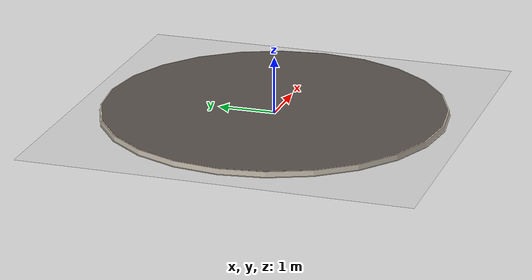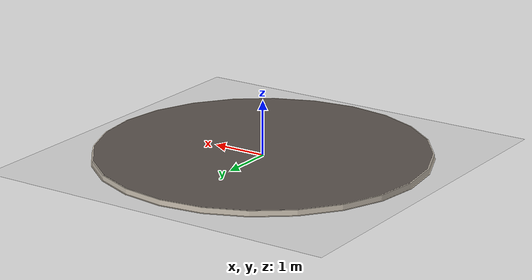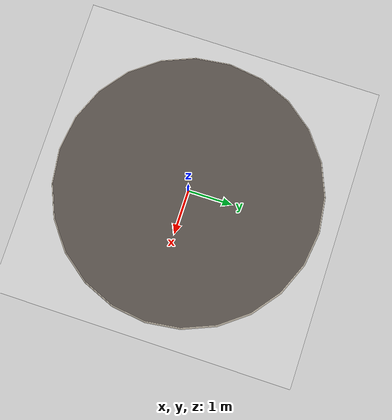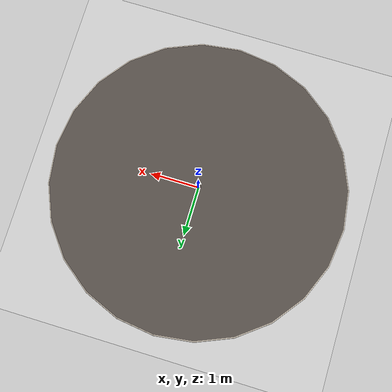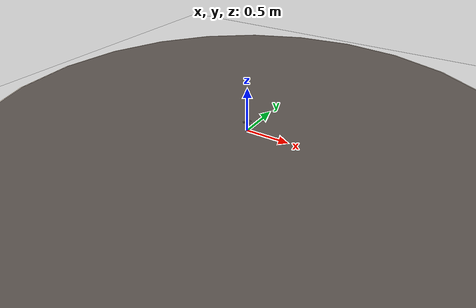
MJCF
<?xml version="1.0" encoding="UTF-8"?>
<mujoco model="sumo_luxury_studio">
  <compiler angle="radian"/>
  <option gravity="0 0 -9.81"/>

  <!-- =============== ASSETS =============== -->
  <asset>
    <!-- Studio cyclorama: white to light gray gradient -->
    <texture name="studio_sky" type="skybox"
             builtin="gradient" width="2048"
             rgb1="1.0 1.0 1.0"
             rgb2="0.95 0.95 0.96"
             mark="none"/>

    <!-- Luxury white/grey checker floor (like MuJoCo default) -->
    <!-- Increased contrast: 0.95 vs 0.7 (was 0.95 vs 0.85) -->
    <!-- Bigger squares: 4x4 grid (was 8x8) -->
    <texture name="studio_floor_tex" type="2d" builtin="checker"
             rgb1="0.95 0.95 0.95"
             rgb2="0.70 0.70 0.70"
             width="512" height="512"
             mark="edge"
             markrgb="0.60 0.60 0.60"/>
    <material name="studio_floor_mat"
              texture="studio_floor_tex"
              texrepeat="2 2"
              texuniform="true"
              specular="0.0"
              shininess="0.0"
              reflectance="0.00"
              emission="0"/>

    <!-- Dohyō ring: muted clay/composite surface -->
    <material name="dohyo_surface"
              rgba="0.82 0.78 0.72 1.0"
              specular="0.05"
              shininess="0.1"
              reflectance="0.02"
              emission="0"/>

    <!-- Dohyō boundary marking: clean circular line -->
    <material name="dohyo_boundary"
              rgba="0.35 0.32 0.30 1.0"
              specular="0"
              shininess="0"
              reflectance="0"/>

    <!-- Dohyō side bevel (subtle darker edge) -->
    <material name="dohyo_bevel"
              rgba="0.72 0.68 0.62 1.0"
              specular="0.03"
              shininess="0.05"
              reflectance="0"/>

    <!-- Start position markers -->
    <material name="red_marker"
              rgba="0.85 0.20 0.20 0.8"
              emission="0"/>
    <material name="blue_marker"
              rgba="0.20 0.35 0.85 0.8"
              emission="0"
              />
  </asset>

  <!-- =============== VISUALS =============== -->
  <visual>
    <!-- Perspective camera with moderate FOV -->
    <global fovy="45" offwidth="1920" offheight="1080"/>
    <!-- Soft ambient + controlled headlight -->
    <headlight ambient="0.35 0.35 0.35" diffuse="0.15 0.15 0.15" specular="0.05 0.05 0.05"/>
    <!-- Clean depth range -->
    <map fogstart="100" fogend="101" znear="0.01" zfar="100" haze="0"/>
    <!-- Enable shadows for grounding -->
    <quality shadowsize="4096" offsamples="4"/>
  </visual>

  <!-- =============== WORLD =============== -->
  <worldbody>

    <!-- KEY LIGHT: Main directional from above-front -->
    <light name="key_light"
           pos="4 -6 8"
           dir="-0.3 0.5 -1"
           diffuse="0.35 0.35 0.35"
           specular="0.2 0.2 0.2"
           directional="true"
           castshadow="true"/>

    <!-- FILL LIGHTS: Softer ambient fill from sides -->
    <light name="fill_left"
           pos="-8 -4 6"
           dir="0.6 0.3 -0.8"
           diffuse="0.35 0.35 0.35"
           specular="0 0 0"
           directional="true"
           castshadow="false"/>

    <light name="fill_right"
           pos="8 -4 6"
           dir="-0.6 0.3 -0.8"
           diffuse="0.35 0.35 0.35"
           specular="0 0 0"
           directional="true"
           castshadow="false"/>

    <!-- RIM LIGHT: Subtle back separation -->
    <light name="rim_light"
           pos="0 8 5"
           dir="0 -1 -0.5"
           diffuse="0.25 0.25 0.25"
           specular="0.1 0.1 0.1"
           directional="true"
           castshadow="false"/>

    <body name="arena" pos="0 0 0">

      <!-- STUDIO FLOOR: Infinite white epoxy plane with grid -->
      <geom name="outside_floor"
            type="plane"
            pos="0 0 0"
            size="500 500 1"
            material="studio_floor_mat"
            friction="0.005 0.0001 0.0001"
            solref="0.01 1.5"
            solimp="0.9 0.95 0.01"
            contype="1"
            conaffinity="1"/>

      <!-- DOHYŌ PLATFORM: Raised circular ring (CRITICAL: radius=3.0 matches reward logic) -->
      <!-- Main platform cylinder -->
      <geom name="sumo_ring"
            type="cylinder"
            size="3.0 0.05"
            pos="0 0 0.05"
            material="dohyo_surface"
            friction="1.00 0.005 0.0001"
            condim="3"
            priority="1"
            solref="0.005 1"
            solimp="0.95 0.99 0.005"
            margin="0.002"
            contype="1"
            conaffinity="1"/>

      <!-- Dohyō bevel edge (visual chamfer for realism) -->
      <geom name="dohyo_bevel_edge"
            type="cylinder"
            size="3.02 0.005"
            pos="0 0 0.005"
            material="dohyo_bevel"
            contype="0"
            conaffinity="0"
            group="1"/>

      <!-- Boundary marking: thin cylinder ring at edge -->
      <geom name="dohyo_boundary_ring"
            type="cylinder"
            size="2.98 0.001"
            pos="0 0 0.101"
            material="dohyo_boundary"
            contype="0"
            conaffinity="0"
            group="1"/>

      <!-- Center mark (minimal logo position) -->
      <site name="center_mark"
            type="cylinder"
            pos="0 0 0.101"
            size="0.05 0.001"
            rgba="0.35 0.32 0.30 0.3"/>

      <!-- Camera target body (camera looks slightly below ring center to frame ring higher) -->
      <body name="ring_center" pos="0 0 0.06">
        <geom name="ring_center_marker" type="sphere" size="0.001"
              rgba="0 0 0 0" group="3" contype="0" conaffinity="0"/>
      </body>

      <!-- RED START marker (invisible, used for spawn position detection) -->
      <!-- Spawn at -1.5m for 3.0m separation (2x max_width_x_m) -->
      <site name="spawn/left"
            pos="-1.5 0 1.27"
            size="0.001"
            rgba="0 0 0 0"
            type="sphere"/>

      <geom name="red_start_line"
            type="box"
            pos="-1.5 0 0.101"
            size="0.25 0.01 0.0005"
            material="red_marker"
            contype="0"
            conaffinity="0"
            group="1"/>

      <!-- BLUE START marker (invisible, used for spawn position detection) -->
      <!-- Spawn at +1.5m for 3.0m separation (2x max_width_x_m) -->
      <site name="spawn/right"
            pos="1.5 0 1.27"
            size="0.001"
            rgba="0 0 0 0"
            type="sphere"/>

      <geom name="blue_start_line"
            type="box"
            pos="1.5 0 0.101"
            size="0.25 0.01 0.0005"
            material="blue_marker"
            contype="0"
            conaffinity="0"
            group="1"/>

      <!-- CAMERAS -->

      <!-- 3/4 perspective "product demo" camera -->
      <!-- Camera looks at ring center (0, 0, 0.1) -->
      <camera name="side"
              pos="5.5 -9.0 4.5"
              mode="targetbody"
              target="ring_center"
              fovy="42"/>

      <!-- Top-down for reference -->
      <camera name="topdown"
              pos="0 0 12"
              quat="1 0 0 0"
              mode="trackcom"
              fovy="50"/>

    </body>
  </worldbody>
</mujoco>
